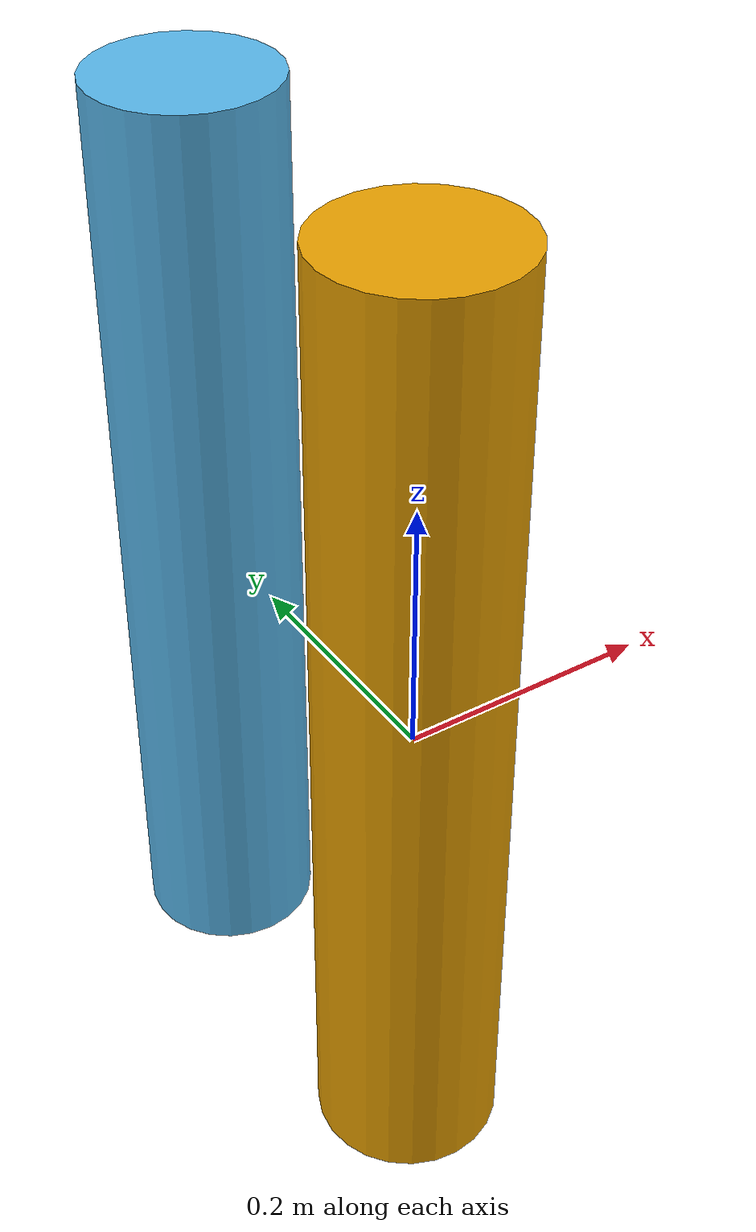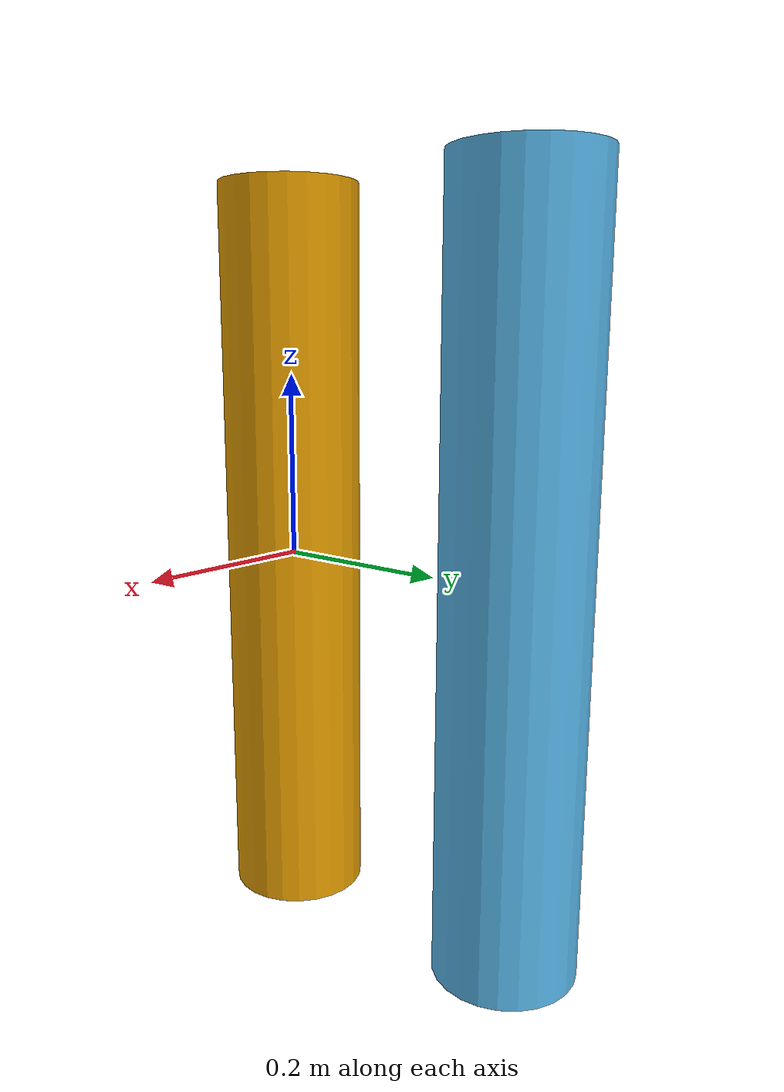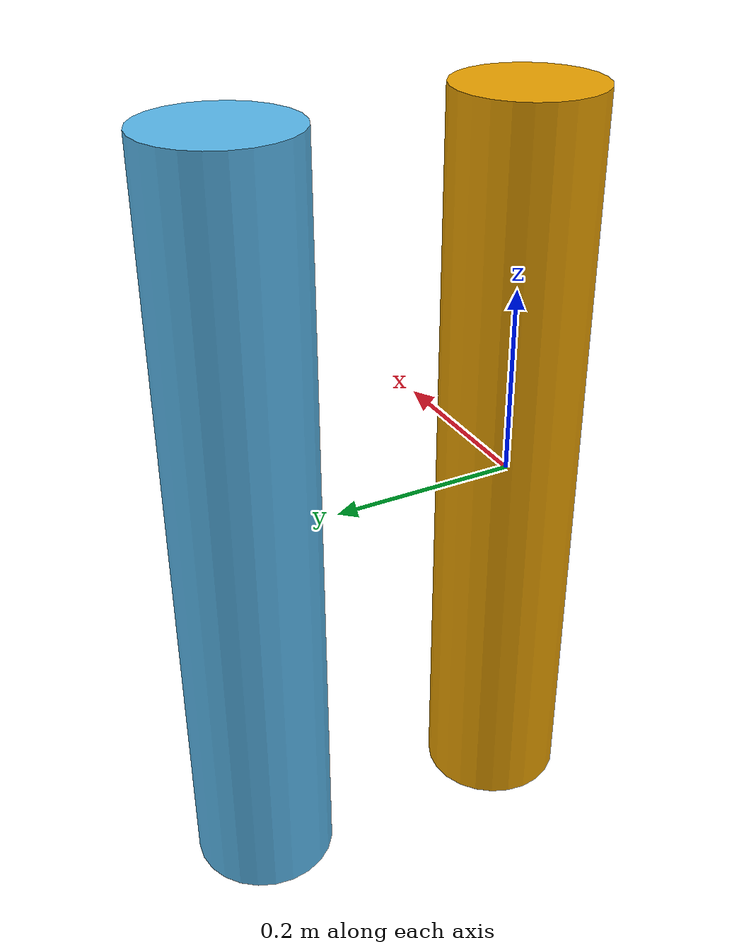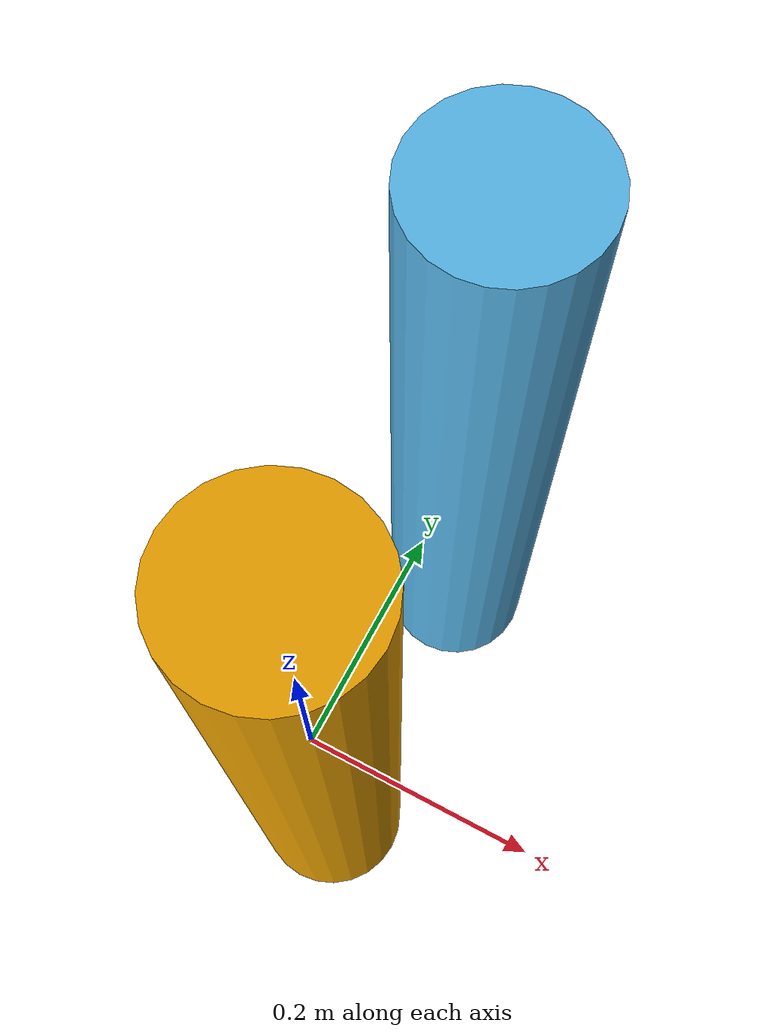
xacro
<?xml version="1.0"?>
<robot name="racecar" xmlns:xacro="http://www.ros.org/wiki/xacro">

  <link name="obstacle">
    <inertial>
      <origin xyz="0 0 0" rpy="0 0 0" />
      <mass value="1000.0" />
      <inertia ixx="1000.0"    ixy="0.0"       ixz="0.0"
                             iyy="1000.0"      iyz="0.0"
                                             izz="1000.0" />
    </inertial>
    <visual>
      <origin xyz="0 0 0" rpy="0 0 0" />
      <geometry>
        <cylinder length="0.8" radius="0.075" />
      </geometry>
    </visual>
    <collision>
      <origin xyz="0 0 0" rpy="0 0 0" />
      <geometry>
        <cylinder length="0.8" radius="0.075" />
      </geometry>
    </collision>
  </link>

  <link name="link_1">
    <inertial>
      <origin xyz="0 0 0" rpy="0 0 0" />
      <mass value="1000.0" />
      <inertia ixx="1000.0"    ixy="0.0"       ixz="0.0"
                             iyy="1000.0"      iyz="0.0"
                                             izz="1000.0" />
    </inertial>
    <visual>
      <origin xyz="0 0 0" rpy="0 0 0" />
      <geometry>
        <cylinder length="0.8" radius="0.075" />
      </geometry>
    </visual>
    <collision>
      <origin xyz="0 0 0" rpy="0 0 0" />
      <geometry>
        <cylinder length="0.8" radius="0.075" />
      </geometry>
    </collision>
  </link>

  <joint name="joint_1" type="fixed">
    <origin xyz="0 0.3 0" rpy="0 0 0" />
    <parent link="obstacle"/>
    <child link="link_1" />
  </joint>

  <gazebo>
    <!-- Planar Move Plugin -->
    <plugin name="obstacle_controller" filename="libgazebo_ros_planar_move.so">
      <commandTopic>/obstacle/cmd_vel</commandTopic>
      <odometryTopic>obstacle_odom</odometryTopic>
      <odometryFrame>obstacle_odom</odometryFrame>
      <odometryRate>10.0</odometryRate>
      <robotBaseFrame>obstacle</robotBaseFrame>
    </plugin>
  </gazebo>

</robot>
